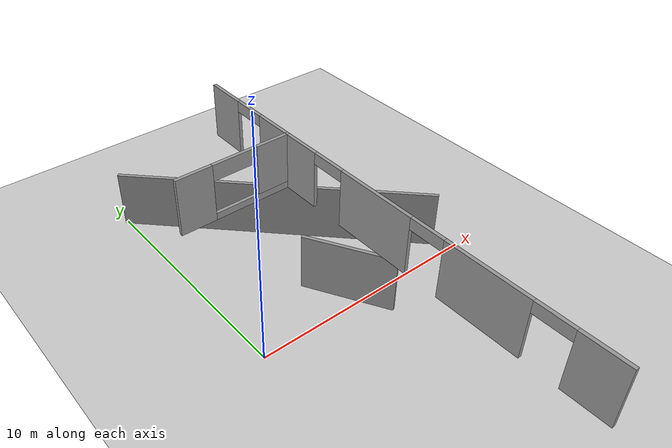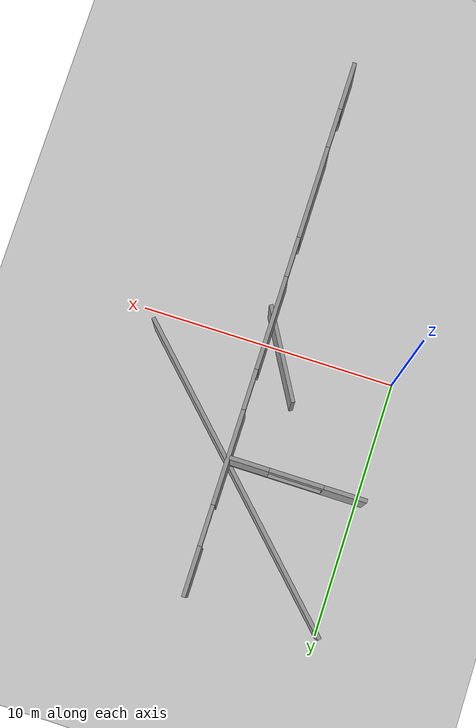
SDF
<sdf version="1.7">
 <world name="me5413_obstacle_world">
  <model name="ground_plane">
   <static>1</static>
   <link name="link">
    <collision name="collision">
     <geometry><plane><normal>0 0 1</normal><size>100 100</size></plane></geometry>
     <surface>
      <contact><collide_bitmask>65535</collide_bitmask></contact>
      <friction><ode><mu>100</mu><mu2>50</mu2></ode></friction>
     </surface>
    </collision>
    <visual name="visual">
     <cast_shadows>0</cast_shadows>
     <geometry><plane><normal>0 0 1</normal><size>100 100</size></plane></geometry>
     <material>
      <script><uri>file://media/materials/scripts/gazebo.material</uri><name>Gazebo/Grey</name></script>
     </material>
    </visual>
   </link>
  </model>
  <model name="smart_house_3_0">
   <link name="Wall_139">
    <pose>7.11602 6.85292 0 0 0 -0.785398</pose>
    <inertial>
     <inertia><ixx>1</ixx><ixy>0</ixy><ixz>0</ixz><iyy>1</iyy><iyz>0</iyz><izz>1</izz></inertia>
     <mass>1</mass>
    </inertial>
    <visual name="Wall_139_Visual">
     <pose>0 0 1.25 0 -0 0</pose>
     <geometry><box><size>13.25 0.15 2.5</size></box></geometry>
     <material>
      <script><uri>file://media/materials/scripts/gazebo.material</uri><name>Gazebo/Grey</name></script>
      <ambient>1 1 1 1</ambient>
      <shader type="pixel"/>
     </material>
     <meta><layer>0</layer></meta>
    </visual>
    <collision name="Wall_139_Collision">
     <pose>0 0 1.25 0 -0 0</pose>
     <geometry><box><size>13.25 0.15 2.5</size></box></geometry>
     <surface>
      <friction>
       <ode><mu>1</mu><mu2>1</mu2><fdir1>0 0 0</fdir1><slip1>0</slip1><slip2>0</slip2></ode>
       <torsional>
        <coefficient>1</coefficient>
        <patch_radius>0</patch_radius>
        <surface_radius>0</surface_radius>
        <use_patch_radius>1</use_patch_radius>
        <ode><slip>0</slip></ode>
       </torsional>
      </friction>
      <bounce><restitution_coefficient>0</restitution_coefficient><threshold>1e+06</threshold></bounce>
      <contact>
       <collide_without_contact>0</collide_without_contact>
       <collide_without_contact_bitmask>1</collide_without_contact_bitmask>
       <collide_bitmask>1</collide_bitmask>
       <ode>
        <soft_cfm>0</soft_cfm>
        <soft_erp>0.2</soft_erp>
        <kp>1e+13</kp>
        <kd>1</kd>
        <max_vel>0.01</max_vel>
        <min_depth>0</min_depth>
       </ode>
       <bullet>
        <split_impulse>1</split_impulse>
        <split_impulse_penetration_threshold>-0.01</split_impulse_penetration_threshold>
        <soft_cfm>0</soft_cfm>
        <soft_erp>0.2</soft_erp>
        <kp>1e+13</kp>
        <kd>1</kd>
       </bullet>
      </contact>
     </surface>
    </collision>
   </link>
   <link name="Wall_288">
    <pose>4.98447 6.48447 2.5 0 -0 0</pose>
    <inertial>
     <inertia><ixx>1</ixx><ixy>0</ixy><ixz>0</ixz><iyy>1</iyy><iyz>0</iyz><izz>1</izz></inertia>
     <mass>1</mass>
    </inertial>
    <visual name="Wall_288_Visual_3">
     <pose>0 0 2.15 0 -0 0</pose>
     <geometry><box><size>2 0.15 0.7</size></box></geometry>
     <material>
      <script><uri>file://media/materials/scripts/gazebo.material</uri><name>Gazebo/Grey</name></script>
      <ambient>1 1 1 1</ambient>
      <shader type="pixel"/>
     </material>
     <meta><layer>2</layer></meta>
    </visual>
    <visual name="Wall_288_Visual_0">
     <pose>-1.7875 0 1.25 0 -0 0</pose>
     <geometry><box><size>1.575 0.15 2.5</size></box></geometry>
     <material>
      <script><uri>file://media/materials/scripts/gazebo.material</uri><name>Gazebo/Grey</name></script>
      <ambient>1 1 1 1</ambient>
      <shader type="pixel"/>
     </material>
     <meta><layer>2</layer></meta>
    </visual>
    <visual name="Wall_288_Visual_1">
     <pose>0.7875 0 0.15 0 -0 0</pose>
     <geometry><box><size>3.575 0.15 0.3</size></box></geometry>
     <material>
      <script><uri>file://media/materials/scripts/gazebo.material</uri><name>Gazebo/Grey</name></script>
      <ambient>1 1 1 1</ambient>
      <shader type="pixel"/>
     </material>
     <meta><layer>2</layer></meta>
    </visual>
    <visual name="Wall_288_Visual_2">
     <pose>1.7875 0 1.4 0 -0 0</pose>
     <geometry><box><size>1.575 0.15 2.2</size></box></geometry>
     <material>
      <script><uri>file://media/materials/scripts/gazebo.material</uri><name>Gazebo/Grey</name></script>
      <ambient>1 1 1 1</ambient>
      <shader type="pixel"/>
     </material>
     <meta><layer>2</layer></meta>
    </visual>
    <collision name="Wall_288_Collision_1">
     <pose>0.7875 0 0.15 0 -0 0</pose>
     <geometry><box><size>3.575 0.15 0.3</size></box></geometry>
     <surface>
      <friction>
       <ode><mu>1</mu><mu2>1</mu2><fdir1>0 0 0</fdir1><slip1>0</slip1><slip2>0</slip2></ode>
       <torsional>
        <coefficient>1</coefficient>
        <patch_radius>0</patch_radius>
        <surface_radius>0</surface_radius>
        <use_patch_radius>1</use_patch_radius>
        <ode><slip>0</slip></ode>
       </torsional>
      </friction>
      <bounce><restitution_coefficient>0</restitution_coefficient><threshold>1e+06</threshold></bounce>
      <contact>
       <collide_without_contact>0</collide_without_contact>
       <collide_without_contact_bitmask>1</collide_without_contact_bitmask>
       <collide_bitmask>1</collide_bitmask>
       <ode>
        <soft_cfm>0</soft_cfm>
        <soft_erp>0.2</soft_erp>
        <kp>1e+13</kp>
        <kd>1</kd>
        <max_vel>0.01</max_vel>
        <min_depth>0</min_depth>
       </ode>
       <bullet>
        <split_impulse>1</split_impulse>
        <split_impulse_penetration_threshold>-0.01</split_impulse_penetration_threshold>
        <soft_cfm>0</soft_cfm>
        <soft_erp>0.2</soft_erp>
        <kp>1e+13</kp>
        <kd>1</kd>
       </bullet>
      </contact>
     </surface>
    </collision>
    <collision name="Wall_288_Collision_3">
     <pose>0 0 2.15 0 -0 0</pose>
     <geometry><box><size>2 0.15 0.7</size></box></geometry>
     <surface>
      <friction>
       <ode><mu>1</mu><mu2>1</mu2><fdir1>0 0 0</fdir1><slip1>0</slip1><slip2>0</slip2></ode>
       <torsional>
        <coefficient>1</coefficient>
        <patch_radius>0</patch_radius>
        <surface_radius>0</surface_radius>
        <use_patch_radius>1</use_patch_radius>
        <ode><slip>0</slip></ode>
       </torsional>
      </friction>
      <bounce><restitution_coefficient>0</restitution_coefficient><threshold>1e+06</threshold></bounce>
      <contact>
       <collide_without_contact>0</collide_without_contact>
       <collide_without_contact_bitmask>1</collide_without_contact_bitmask>
       <collide_bitmask>1</collide_bitmask>
       <ode>
        <soft_cfm>0</soft_cfm>
        <soft_erp>0.2</soft_erp>
        <kp>1e+13</kp>
        <kd>1</kd>
        <max_vel>0.01</max_vel>
        <min_depth>0</min_depth>
       </ode>
       <bullet>
        <split_impulse>1</split_impulse>
        <split_impulse_penetration_threshold>-0.01</split_impulse_penetration_threshold>
        <soft_cfm>0</soft_cfm>
        <soft_erp>0.2</soft_erp>
        <kp>1e+13</kp>
        <kd>1</kd>
       </bullet>
      </contact>
     </surface>
    </collision>
    <collision name="Wall_288_Collision_0">
     <pose>-1.7875 0 1.25 0 -0 0</pose>
     <geometry><box><size>1.575 0.15 2.5</size></box></geometry>
     <surface>
      <friction>
       <ode><mu>1</mu><mu2>1</mu2><fdir1>0 0 0</fdir1><slip1>0</slip1><slip2>0</slip2></ode>
       <torsional>
        <coefficient>1</coefficient>
        <patch_radius>0</patch_radius>
        <surface_radius>0</surface_radius>
        <use_patch_radius>1</use_patch_radius>
        <ode><slip>0</slip></ode>
       </torsional>
      </friction>
      <bounce><restitution_coefficient>0</restitution_coefficient><threshold>1e+06</threshold></bounce>
      <contact>
       <collide_without_contact>0</collide_without_contact>
       <collide_without_contact_bitmask>1</collide_without_contact_bitmask>
       <collide_bitmask>1</collide_bitmask>
       <ode>
        <soft_cfm>0</soft_cfm>
        <soft_erp>0.2</soft_erp>
        <kp>1e+13</kp>
        <kd>1</kd>
        <max_vel>0.01</max_vel>
        <min_depth>0</min_depth>
       </ode>
       <bullet>
        <split_impulse>1</split_impulse>
        <split_impulse_penetration_threshold>-0.01</split_impulse_penetration_threshold>
        <soft_cfm>0</soft_cfm>
        <soft_erp>0.2</soft_erp>
        <kp>1e+13</kp>
        <kd>1</kd>
       </bullet>
      </contact>
     </surface>
    </collision>
    <collision name="Wall_288_Collision_2">
     <pose>1.7875 0 1.4 0 -0 0</pose>
     <geometry><box><size>1.575 0.15 2.2</size></box></geometry>
     <surface>
      <friction>
       <ode><mu>1</mu><mu2>1</mu2><fdir1>0 0 0</fdir1><slip1>0</slip1><slip2>0</slip2></ode>
       <torsional>
        <coefficient>1</coefficient>
        <patch_radius>0</patch_radius>
        <surface_radius>0</surface_radius>
        <use_patch_radius>1</use_patch_radius>
        <ode><slip>0</slip></ode>
       </torsional>
      </friction>
      <bounce><restitution_coefficient>0</restitution_coefficient><threshold>1e+06</threshold></bounce>
      <contact>
       <collide_without_contact>0</collide_without_contact>
       <collide_without_contact_bitmask>1</collide_without_contact_bitmask>
       <collide_bitmask>1</collide_bitmask>
       <ode>
        <soft_cfm>0</soft_cfm>
        <soft_erp>0.2</soft_erp>
        <kp>1e+13</kp>
        <kd>1</kd>
        <max_vel>0.01</max_vel>
        <min_depth>0</min_depth>
       </ode>
       <bullet>
        <split_impulse>1</split_impulse>
        <split_impulse_penetration_threshold>-0.01</split_impulse_penetration_threshold>
        <soft_cfm>0</soft_cfm>
        <soft_erp>0.2</soft_erp>
        <kp>1e+13</kp>
        <kd>1</kd>
       </bullet>
      </contact>
     </surface>
    </collision>
   </link>
   <link name="Wall_294">
    <pose>7.48447 1.48447 2.5 0 -0 1.5708</pose>
    <inertial>
     <inertia><ixx>1</ixx><ixy>0</ixy><ixz>0</ixz><iyy>1</iyy><iyz>0</iyz><izz>1</izz></inertia>
     <mass>1</mass>
    </inertial>
    <visual name="Wall_294_Visual_2">
     <pose>0 0 1.25 0 -0 0</pose>
     <geometry><box><size>3.5 0.15 2.5</size></box></geometry>
     <material>
      <script><uri>file://media/materials/scripts/gazebo.material</uri><name>Gazebo/Grey</name></script>
      <ambient>1 1 1 1</ambient>
      <shader type="pixel"/>
     </material>
     <meta><layer>2</layer></meta>
    </visual>
    <visual name="Wall_294_Visual_5">
     <pose>-7.5 0 2.25 0 -0 0</pose>
     <geometry><box><size>1.5 0.15 0.5</size></box></geometry>
     <material>
      <script><uri>file://media/materials/scripts/gazebo.material</uri><name>Gazebo/Grey</name></script>
      <ambient>1 1 1 1</ambient>
      <shader type="pixel"/>
     </material>
     <meta><layer>2</layer></meta>
    </visual>
    <visual name="Wall_294_Visual_6">
     <pose>-2.5 0 2.25 0 -0 0</pose>
     <geometry><box><size>1.5 0.15 0.5</size></box></geometry>
     <material>
      <script><uri>file://media/materials/scripts/gazebo.material</uri><name>Gazebo/Grey</name></script>
      <ambient>1 1 1 1</ambient>
      <shader type="pixel"/>
     </material>
     <meta><layer>2</layer></meta>
    </visual>
    <visual name="Wall_294_Visual_4">
     <pose>9.1625 0 1.25 0 -0 0</pose>
     <geometry><box><size>1.825 0.15 2.5</size></box></geometry>
     <material>
      <script><uri>file://media/materials/scripts/gazebo.material</uri><name>Gazebo/Grey</name></script>
      <ambient>1 1 1 1</ambient>
      <shader type="pixel"/>
     </material>
     <meta><layer>2</layer></meta>
    </visual>
    <visual name="Wall_294_Visual_1">
     <pose>-5 0 1.25 0 -0 0</pose>
     <geometry><box><size>3.5 0.15 2.5</size></box></geometry>
     <material>
      <script><uri>file://media/materials/scripts/gazebo.material</uri><name>Gazebo/Grey</name></script>
      <ambient>1 1 1 1</ambient>
      <shader type="pixel"/>
     </material>
     <meta><layer>2</layer></meta>
    </visual>
    <visual name="Wall_294_Visual_0">
     <pose>-9.1625 0 1.25 0 -0 0</pose>
     <geometry><box><size>1.825 0.15 2.5</size></box></geometry>
     <material>
      <script><uri>file://media/materials/scripts/gazebo.material</uri><name>Gazebo/Grey</name></script>
      <ambient>1 1 1 1</ambient>
      <shader type="pixel"/>
     </material>
     <meta><layer>2</layer></meta>
    </visual>
    <visual name="Wall_294_Visual_3">
     <pose>5 0 1.25 0 -0 0</pose>
     <geometry><box><size>3.5 0.15 2.5</size></box></geometry>
     <material>
      <script><uri>file://media/materials/scripts/gazebo.material</uri><name>Gazebo/Grey</name></script>
      <ambient>1 1 1 1</ambient>
      <shader type="pixel"/>
     </material>
     <meta><layer>2</layer></meta>
    </visual>
    <visual name="Wall_294_Visual_8">
     <pose>7.5 0 2.25 0 -0 0</pose>
     <geometry><box><size>1.5 0.15 0.5</size></box></geometry>
     <material>
      <script><uri>file://media/materials/scripts/gazebo.material</uri><name>Gazebo/Grey</name></script>
      <ambient>1 1 1 1</ambient>
      <shader type="pixel"/>
     </material>
     <meta><layer>2</layer></meta>
    </visual>
    <visual name="Wall_294_Visual_7">
     <pose>2.5 0 2.25 0 -0 0</pose>
     <geometry><box><size>1.5 0.15 0.5</size></box></geometry>
     <material>
      <script><uri>file://media/materials/scripts/gazebo.material</uri><name>Gazebo/Grey</name></script>
      <ambient>1 1 1 1</ambient>
      <shader type="pixel"/>
     </material>
     <meta><layer>2</layer></meta>
    </visual>
    <collision name="Wall_294_Collision_2">
     <pose>0 0 1.25 0 -0 0</pose>
     <geometry><box><size>3.5 0.15 2.5</size></box></geometry>
     <surface>
      <friction>
       <ode><mu>1</mu><mu2>1</mu2><fdir1>0 0 0</fdir1><slip1>0</slip1><slip2>0</slip2></ode>
       <torsional>
        <coefficient>1</coefficient>
        <patch_radius>0</patch_radius>
        <surface_radius>0</surface_radius>
        <use_patch_radius>1</use_patch_radius>
        <ode><slip>0</slip></ode>
       </torsional>
      </friction>
      <bounce><restitution_coefficient>0</restitution_coefficient><threshold>1e+06</threshold></bounce>
      <contact>
       <collide_without_contact>0</collide_without_contact>
       <collide_without_contact_bitmask>1</collide_without_contact_bitmask>
       <collide_bitmask>1</collide_bitmask>
       <ode>
        <soft_cfm>0</soft_cfm>
        <soft_erp>0.2</soft_erp>
        <kp>1e+13</kp>
        <kd>1</kd>
        <max_vel>0.01</max_vel>
        <min_depth>0</min_depth>
       </ode>
       <bullet>
        <split_impulse>1</split_impulse>
        <split_impulse_penetration_threshold>-0.01</split_impulse_penetration_threshold>
        <soft_cfm>0</soft_cfm>
        <soft_erp>0.2</soft_erp>
        <kp>1e+13</kp>
        <kd>1</kd>
       </bullet>
      </contact>
     </surface>
    </collision>
    <collision name="Wall_294_Collision_6">
     <pose>-2.5 0 2.25 0 -0 0</pose>
     <geometry><box><size>1.5 0.15 0.5</size></box></geometry>
     <surface>
      <friction>
       <ode><mu>1</mu><mu2>1</mu2><fdir1>0 0 0</fdir1><slip1>0</slip1><slip2>0</slip2></ode>
       <torsional>
        <coefficient>1</coefficient>
        <patch_radius>0</patch_radius>
        <surface_radius>0</surface_radius>
        <use_patch_radius>1</use_patch_radius>
        <ode><slip>0</slip></ode>
       </torsional>
      </friction>
      <bounce><restitution_coefficient>0</restitution_coefficient><threshold>1e+06</threshold></bounce>
      <contact>
       <collide_without_contact>0</collide_without_contact>
       <collide_without_contact_bitmask>1</collide_without_contact_bitmask>
       <collide_bitmask>1</collide_bitmask>
       <ode>
        <soft_cfm>0</soft_cfm>
        <soft_erp>0.2</soft_erp>
        <kp>1e+13</kp>
        <kd>1</kd>
        <max_vel>0.01</max_vel>
        <min_depth>0</min_depth>
       </ode>
       <bullet>
        <split_impulse>1</split_impulse>
        <split_impulse_penetration_threshold>-0.01</split_impulse_penetration_threshold>
        <soft_cfm>0</soft_cfm>
        <soft_erp>0.2</soft_erp>
        <kp>1e+13</kp>
        <kd>1</kd>
       </bullet>
      </contact>
     </surface>
    </collision>
    <collision name="Wall_294_Collision_1">
     <pose>-5 0 1.25 0 -0 0</pose>
     <geometry><box><size>3.5 0.15 2.5</size></box></geometry>
     <surface>
      <friction>
       <ode><mu>1</mu><mu2>1</mu2><fdir1>0 0 0</fdir1><slip1>0</slip1><slip2>0</slip2></ode>
       <torsional>
        <coefficient>1</coefficient>
        <patch_radius>0</patch_radius>
        <surface_radius>0</surface_radius>
        <use_patch_radius>1</use_patch_radius>
        <ode><slip>0</slip></ode>
       </torsional>
      </friction>
      <bounce><restitution_coefficient>0</restitution_coefficient><threshold>1e+06</threshold></bounce>
      <contact>
       <collide_without_contact>0</collide_without_contact>
       <collide_without_contact_bitmask>1</collide_without_contact_bitmask>
       <collide_bitmask>1</collide_bitmask>
       <ode>
        <soft_cfm>0</soft_cfm>
        <soft_erp>0.2</soft_erp>
        <kp>1e+13</kp>
        <kd>1</kd>
        <max_vel>0.01</max_vel>
        <min_depth>0</min_depth>
       </ode>
       <bullet>
        <split_impulse>1</split_impulse>
        <split_impulse_penetration_threshold>-0.01</split_impulse_penetration_threshold>
        <soft_cfm>0</soft_cfm>
        <soft_erp>0.2</soft_erp>
        <kp>1e+13</kp>
        <kd>1</kd>
       </bullet>
      </contact>
     </surface>
    </collision>
    <collision name="Wall_294_Collision_0">
     <pose>-9.1625 0 1.25 0 -0 0</pose>
     <geometry><box><size>1.825 0.15 2.5</size></box></geometry>
     <surface>
      <friction>
       <ode><mu>1</mu><mu2>1</mu2><fdir1>0 0 0</fdir1><slip1>0</slip1><slip2>0</slip2></ode>
       <torsional>
        <coefficient>1</coefficient>
        <patch_radius>0</patch_radius>
        <surface_radius>0</surface_radius>
        <use_patch_radius>1</use_patch_radius>
        <ode><slip>0</slip></ode>
       </torsional>
      </friction>
      <bounce><restitution_coefficient>0</restitution_coefficient><threshold>1e+06</threshold></bounce>
      <contact>
       <collide_without_contact>0</collide_without_contact>
       <collide_without_contact_bitmask>1</collide_without_contact_bitmask>
       <collide_bitmask>1</collide_bitmask>
       <ode>
        <soft_cfm>0</soft_cfm>
        <soft_erp>0.2</soft_erp>
        <kp>1e+13</kp>
        <kd>1</kd>
        <max_vel>0.01</max_vel>
        <min_depth>0</min_depth>
       </ode>
       <bullet>
        <split_impulse>1</split_impulse>
        <split_impulse_penetration_threshold>-0.01</split_impulse_penetration_threshold>
        <soft_cfm>0</soft_cfm>
        <soft_erp>0.2</soft_erp>
        <kp>1e+13</kp>
        <kd>1</kd>
       </bullet>
      </contact>
     </surface>
    </collision>
    <collision name="Wall_294_Collision_8">
     <pose>7.5 0 2.25 0 -0 0</pose>
     <geometry><box><size>1.5 0.15 0.5</size></box></geometry>
     <surface>
      <friction>
       <ode><mu>1</mu><mu2>1</mu2><fdir1>0 0 0</fdir1><slip1>0</slip1><slip2>0</slip2></ode>
       <torsional>
        <coefficient>1</coefficient>
        <patch_radius>0</patch_radius>
        <surface_radius>0</surface_radius>
        <use_patch_radius>1</use_patch_radius>
        <ode><slip>0</slip></ode>
       </torsional>
      </friction>
      <bounce><restitution_coefficient>0</restitution_coefficient><threshold>1e+06</threshold></bounce>
      <contact>
       <collide_without_contact>0</collide_without_contact>
       <collide_without_contact_bitmask>1</collide_without_contact_bitmask>
       <collide_bitmask>1</collide_bitmask>
       <ode>
        <soft_cfm>0</soft_cfm>
        <soft_erp>0.2</soft_erp>
        <kp>1e+13</kp>
        <kd>1</kd>
        <max_vel>0.01</max_vel>
        <min_depth>0</min_depth>
       </ode>
       <bullet>
        <split_impulse>1</split_impulse>
        <split_impulse_penetration_threshold>-0.01</split_impulse_penetration_threshold>
        <soft_cfm>0</soft_cfm>
        <soft_erp>0.2</soft_erp>
        <kp>1e+13</kp>
        <kd>1</kd>
       </bullet>
      </contact>
     </surface>
    </collision>
    <collision name="Wall_294_Collision_5">
     <pose>-7.5 0 2.25 0 -0 0</pose>
     <geometry><box><size>1.5 0.15 0.5</size></box></geometry>
     <surface>
      <friction>
       <ode><mu>1</mu><mu2>1</mu2><fdir1>0 0 0</fdir1><slip1>0</slip1><slip2>0</slip2></ode>
       <torsional>
        <coefficient>1</coefficient>
        <patch_radius>0</patch_radius>
        <surface_radius>0</surface_radius>
        <use_patch_radius>1</use_patch_radius>
        <ode><slip>0</slip></ode>
       </torsional>
      </friction>
      <bounce><restitution_coefficient>0</restitution_coefficient><threshold>1e+06</threshold></bounce>
      <contact>
       <collide_without_contact>0</collide_without_contact>
       <collide_without_contact_bitmask>1</collide_without_contact_bitmask>
       <collide_bitmask>1</collide_bitmask>
       <ode>
        <soft_cfm>0</soft_cfm>
        <soft_erp>0.2</soft_erp>
        <kp>1e+13</kp>
        <kd>1</kd>
        <max_vel>0.01</max_vel>
        <min_depth>0</min_depth>
       </ode>
       <bullet>
        <split_impulse>1</split_impulse>
        <split_impulse_penetration_threshold>-0.01</split_impulse_penetration_threshold>
        <soft_cfm>0</soft_cfm>
        <soft_erp>0.2</soft_erp>
        <kp>1e+13</kp>
        <kd>1</kd>
       </bullet>
      </contact>
     </surface>
    </collision>
    <collision name="Wall_294_Collision_3">
     <pose>5 0 1.25 0 -0 0</pose>
     <geometry><box><size>3.5 0.15 2.5</size></box></geometry>
     <surface>
      <friction>
       <ode><mu>1</mu><mu2>1</mu2><fdir1>0 0 0</fdir1><slip1>0</slip1><slip2>0</slip2></ode>
       <torsional>
        <coefficient>1</coefficient>
        <patch_radius>0</patch_radius>
        <surface_radius>0</surface_radius>
        <use_patch_radius>1</use_patch_radius>
        <ode><slip>0</slip></ode>
       </torsional>
      </friction>
      <bounce><restitution_coefficient>0</restitution_coefficient><threshold>1e+06</threshold></bounce>
      <contact>
       <collide_without_contact>0</collide_without_contact>
       <collide_without_contact_bitmask>1</collide_without_contact_bitmask>
       <collide_bitmask>1</collide_bitmask>
       <ode>
        <soft_cfm>0</soft_cfm>
        <soft_erp>0.2</soft_erp>
        <kp>1e+13</kp>
        <kd>1</kd>
        <max_vel>0.01</max_vel>
        <min_depth>0</min_depth>
       </ode>
       <bullet>
        <split_impulse>1</split_impulse>
        <split_impulse_penetration_threshold>-0.01</split_impulse_penetration_threshold>
        <soft_cfm>0</soft_cfm>
        <soft_erp>0.2</soft_erp>
        <kp>1e+13</kp>
        <kd>1</kd>
       </bullet>
      </contact>
     </surface>
    </collision>
    <collision name="Wall_294_Collision_7">
     <pose>2.5 0 2.25 0 -0 0</pose>
     <geometry><box><size>1.5 0.15 0.5</size></box></geometry>
     <surface>
      <friction>
       <ode><mu>1</mu><mu2>1</mu2><fdir1>0 0 0</fdir1><slip1>0</slip1><slip2>0</slip2></ode>
       <torsional>
        <coefficient>1</coefficient>
        <patch_radius>0</patch_radius>
        <surface_radius>0</surface_radius>
        <use_patch_radius>1</use_patch_radius>
        <ode><slip>0</slip></ode>
       </torsional>
      </friction>
      <bounce><restitution_coefficient>0</restitution_coefficient><threshold>1e+06</threshold></bounce>
      <contact>
       <collide_without_contact>0</collide_without_contact>
       <collide_without_contact_bitmask>1</collide_without_contact_bitmask>
       <collide_bitmask>1</collide_bitmask>
       <ode>
        <soft_cfm>0</soft_cfm>
        <soft_erp>0.2</soft_erp>
        <kp>1e+13</kp>
        <kd>1</kd>
        <max_vel>0.01</max_vel>
        <min_depth>0</min_depth>
       </ode>
       <bullet>
        <split_impulse>1</split_impulse>
        <split_impulse_penetration_threshold>-0.01</split_impulse_penetration_threshold>
        <soft_cfm>0</soft_cfm>
        <soft_erp>0.2</soft_erp>
        <kp>1e+13</kp>
        <kd>1</kd>
       </bullet>
      </contact>
     </surface>
    </collision>
    <collision name="Wall_294_Collision_4">
     <pose>9.1625 0 1.25 0 -0 0</pose>
     <geometry><box><size>1.825 0.15 2.5</size></box></geometry>
     <surface>
      <friction>
       <ode><mu>1</mu><mu2>1</mu2><fdir1>0 0 0</fdir1><slip1>0</slip1><slip2>0</slip2></ode>
       <torsional>
        <coefficient>1</coefficient>
        <patch_radius>0</patch_radius>
        <surface_radius>0</surface_radius>
        <use_patch_radius>1</use_patch_radius>
        <ode><slip>0</slip></ode>
       </torsional>
      </friction>
      <bounce><restitution_coefficient>0</restitution_coefficient><threshold>1e+06</threshold></bounce>
      <contact>
       <collide_without_contact>0</collide_without_contact>
       <collide_without_contact_bitmask>1</collide_without_contact_bitmask>
       <collide_bitmask>1</collide_bitmask>
       <ode>
        <soft_cfm>0</soft_cfm>
        <soft_erp>0.2</soft_erp>
        <kp>1e+13</kp>
        <kd>1</kd>
        <max_vel>0.01</max_vel>
        <min_depth>0</min_depth>
       </ode>
       <bullet>
        <split_impulse>1</split_impulse>
        <split_impulse_penetration_threshold>-0.01</split_impulse_penetration_threshold>
        <soft_cfm>0</soft_cfm>
        <soft_erp>0.2</soft_erp>
        <kp>1e+13</kp>
        <kd>1</kd>
       </bullet>
      </contact>
     </surface>
    </collision>
   </link>
   <link name="Wall_72">
    <pose>6.84936 1.99313 0 0 0 -1.0472</pose>
    <inertial>
     <inertia><ixx>1</ixx><ixy>0</ixy><ixz>0</ixz><iyy>1</iyy><iyz>0</iyz><izz>1</izz></inertia>
     <mass>1</mass>
    </inertial>
    <visual name="Wall_72_Visual">
     <pose>0 0 1.25 0 -0 0</pose>
     <geometry><box><size>3.75 0.15 2.5</size></box></geometry>
     <material>
      <script><uri>file://media/materials/scripts/gazebo.material</uri><name>Gazebo/Grey</name></script>
      <ambient>1 1 1 1</ambient>
      <shader type="pixel"/>
     </material>
     <meta><layer>0</layer></meta>
    </visual>
    <collision name="Wall_72_Collision">
     <pose>0 0 1.25 0 -0 0</pose>
     <geometry><box><size>3.75 0.15 2.5</size></box></geometry>
     <surface>
      <friction>
       <ode><mu>1</mu><mu2>1</mu2><fdir1>0 0 0</fdir1><slip1>0</slip1><slip2>0</slip2></ode>
       <torsional>
        <coefficient>1</coefficient>
        <patch_radius>0</patch_radius>
        <surface_radius>0</surface_radius>
        <use_patch_radius>1</use_patch_radius>
        <ode><slip>0</slip></ode>
       </torsional>
      </friction>
      <bounce><restitution_coefficient>0</restitution_coefficient><threshold>1e+06</threshold></bounce>
      <contact>
       <collide_without_contact>0</collide_without_contact>
       <collide_without_contact_bitmask>1</collide_without_contact_bitmask>
       <collide_bitmask>1</collide_bitmask>
       <ode>
        <soft_cfm>0</soft_cfm>
        <soft_erp>0.2</soft_erp>
        <kp>1e+13</kp>
        <kd>1</kd>
        <max_vel>0.01</max_vel>
        <min_depth>0</min_depth>
       </ode>
       <bullet>
        <split_impulse>1</split_impulse>
        <split_impulse_penetration_threshold>-0.01</split_impulse_penetration_threshold>
        <soft_cfm>0</soft_cfm>
        <soft_erp>0.2</soft_erp>
        <kp>1e+13</kp>
        <kd>1</kd>
       </bullet>
      </contact>
     </surface>
    </collision>
   </link>
   <static>1</static>
   <pose>-2.5 -1.5 0 0 -0 0</pose>
  </model>
 </world>
</sdf>
